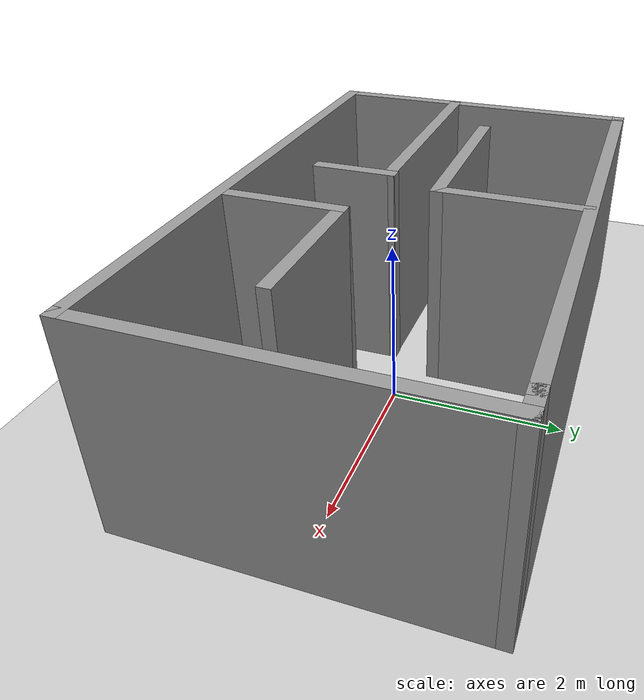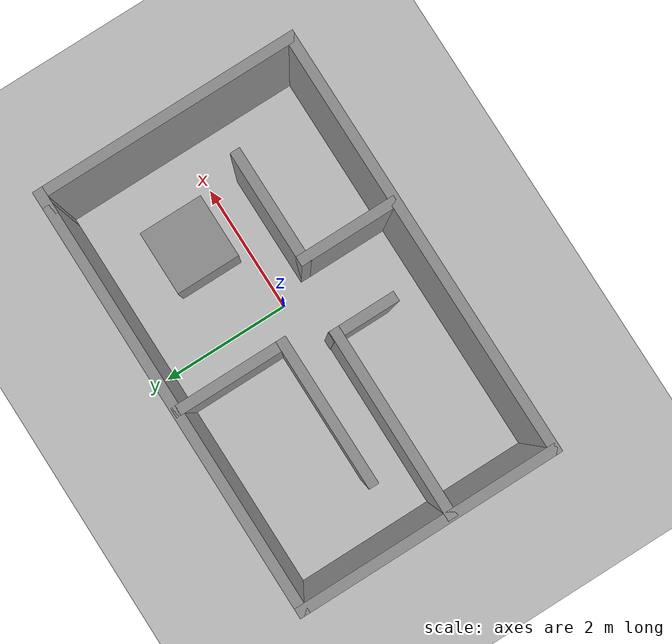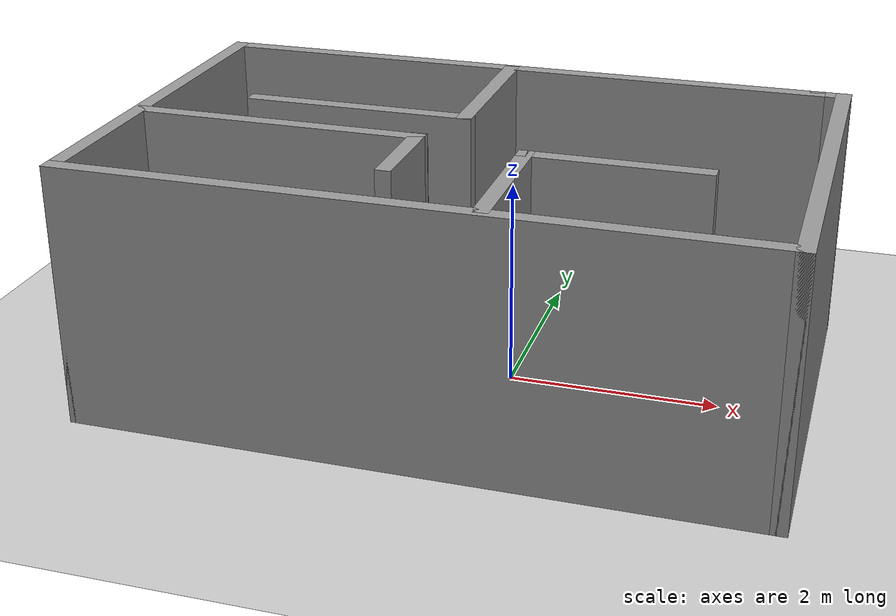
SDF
<sdf version="1.7">
 <world name="default">
  <light name="sun" type="directional">
   <pose>0 0 10 0 -0 0</pose>
   <diffuse>0.8 0.8 0.8 1</diffuse>
   <specular>0.2 0.2 0.2 1</specular>
   <attenuation>
    <range>1000</range>
    <constant>0.9</constant>
    <linear>0.01</linear>
    <quadratic>0.001</quadratic>
   </attenuation>
   <direction>-0.5 0.1 -0.9</direction>
   <spot><inner_angle>0</inner_angle><outer_angle>0</outer_angle><falloff>0</falloff></spot>
  </light>
  <model name="ground_plane">
   <static>1</static>
   <link name="link">
    <collision name="collision">
     <geometry><plane><normal>0 0 1</normal><size>100 100</size></plane></geometry>
     <surface><friction><ode><mu>100</mu><mu2>50</mu2></ode></friction></surface>
    </collision>
    <visual name="visual">
     <cast_shadows>0</cast_shadows>
     <geometry><plane><normal>0 0 1</normal><size>100 100</size></plane></geometry>
     <material>
      <script><uri>file://media/materials/scripts/gazebo.material</uri><name>Gazebo/Grey</name></script>
     </material>
    </visual>
   </link>
  </model>
  <gravity>0 0 -9.8</gravity>
  <magnetic_field>6e-06 2.3e-05 -4.2e-05</magnetic_field>
  <atmosphere type="adiabatic"/>
  <physics type="ode">
   <max_step_size>0.001</max_step_size>
   <real_time_factor>1</real_time_factor>
   <real_time_update_rate>1000</real_time_update_rate>
  </physics>
  <scene><ambient>0.4 0.4 0.4 1</ambient><background>0.7 0.7 0.7 1</background><shadows>1</shadows></scene>
  <audio><device>default</device></audio>
  <spherical_coordinates>
   <surface_model>EARTH_WGS84</surface_model>
   <latitude_deg>0</latitude_deg>
   <longitude_deg>0</longitude_deg>
   <elevation>0</elevation>
   <heading_deg>0</heading_deg>
  </spherical_coordinates>
  <model name="room">
   <pose>-0.398923 1.18347 0 0 -0 0</pose>
   <link name="Wall_0">
    <collision name="Wall_0_Collision">
     <geometry><box><size>6.25 0.15 2.5</size></box></geometry>
     <pose>0 0 1.25 0 -0 0</pose>
    </collision>
    <visual name="Wall_0_Visual">
     <pose>0 0 1.25 0 -0 0</pose>
     <geometry><box><size>6.25 0.15 2.5</size></box></geometry>
     <material>
      <script><uri>file://media/materials/scripts/gazebo.material</uri><name>Gazebo/Grey</name></script>
      <ambient>1 1 1 1</ambient>
     </material>
     <meta><layer>0</layer></meta>
    </visual>
    <pose>-0.125 0.7775 0 0 -0 3.14159</pose>
   </link>
   <link name="Wall_1">
    <collision name="Wall_1_Collision">
     <geometry><box><size>4 0.15 2.5</size></box></geometry>
     <pose>0 0 1.25 0 -0 0</pose>
    </collision>
    <visual name="Wall_1_Visual">
     <pose>0 0 1.25 0 -0 0</pose>
     <geometry><box><size>4 0.15 2.5</size></box></geometry>
     <material>
      <script><uri>file://media/materials/scripts/gazebo.material</uri><name>Gazebo/Grey</name></script>
      <ambient>1 1 1 1</ambient>
     </material>
     <meta><layer>0</layer></meta>
    </visual>
    <pose>-3.175 -1.1475 0 0 -0 -1.5708</pose>
   </link>
   <link name="Wall_10">
    <collision name="Wall_10_Collision">
     <geometry><box><size>1 0.15 2.5</size></box></geometry>
     <pose>0 0 1.25 0 -0 0</pose>
    </collision>
    <visual name="Wall_10_Visual">
     <pose>0 0 1.25 0 -0 0</pose>
     <geometry><box><size>1 0.15 2.5</size></box></geometry>
     <material>
      <script><uri>file://media/materials/scripts/gazebo.material</uri><name>Gazebo/Grey</name></script>
      <ambient>1 1 1 1</ambient>
     </material>
     <meta><layer>0</layer></meta>
    </visual>
    <pose>-0.415 -1.9175 0 0 -0 -1.5708</pose>
   </link>
   <link name="Wall_12">
    <collision name="Wall_12_Collision">
     <geometry><box><size>1.5 0.15 2.5</size></box></geometry>
     <pose>0 0 1.25 0 -0 0</pose>
    </collision>
    <visual name="Wall_12_Visual">
     <pose>0 0 1.25 0 -0 0</pose>
     <geometry><box><size>1.5 0.15 2.5</size></box></geometry>
     <material>
      <script><uri>file://media/materials/scripts/gazebo.material</uri><name>Gazebo/Grey</name></script>
      <ambient>1 1 1 1</ambient>
     </material>
     <meta><layer>0</layer></meta>
    </visual>
    <pose>0.635 -2.3375 0 0 -0 -1.5708</pose>
   </link>
   <link name="Wall_15">
    <collision name="Wall_15_Collision">
     <geometry><box><size>1.75 0.15 2.5</size></box></geometry>
     <pose>0 0 1.25 0 -0 0</pose>
    </collision>
    <visual name="Wall_15_Visual">
     <pose>0 0 1.25 0 -0 0</pose>
     <geometry><box><size>1.75 0.15 2.5</size></box></geometry>
     <material>
      <script><uri>file://media/materials/scripts/gazebo.material</uri><name>Gazebo/Grey</name></script>
      <ambient>1 1 1 1</ambient>
     </material>
     <meta><layer>0</layer></meta>
    </visual>
    <pose>1.435 -1.6625 0 0 -0 0</pose>
   </link>
   <link name="Wall_2">
    <collision name="Wall_2_Collision">
     <geometry><box><size>6.5 0.15 2.5</size></box></geometry>
     <pose>0 0 1.25 0 -0 0</pose>
    </collision>
    <visual name="Wall_2_Visual">
     <pose>0 0 1.25 0 -0 0</pose>
     <geometry><box><size>6.5 0.15 2.5</size></box></geometry>
     <material>
      <script><uri>file://media/materials/scripts/gazebo.material</uri><name>Gazebo/Grey</name></script>
      <ambient>1 1 1 1</ambient>
     </material>
     <meta><layer>0</layer></meta>
    </visual>
    <pose>0 -3.0725 0 0 -0 0</pose>
   </link>
   <link name="Wall_3">
    <collision name="Wall_3_Collision">
     <geometry><box><size>4 0.15 2.5</size></box></geometry>
     <pose>0 0 1.25 0 -0 0</pose>
    </collision>
    <visual name="Wall_3_Visual">
     <pose>0 0 1.25 0 -0 0</pose>
     <geometry><box><size>4 0.15 2.5</size></box></geometry>
     <material>
      <script><uri>file://media/materials/scripts/gazebo.material</uri><name>Gazebo/Grey</name></script>
      <ambient>1 1 1 1</ambient>
     </material>
     <meta><layer>0</layer></meta>
    </visual>
    <pose>3.175 -1.1475 0 0 -0 1.5708</pose>
   </link>
   <link name="Wall_4">
    <collision name="Wall_4_Collision">
     <geometry><box><size>0.4 0.15 2.5</size></box></geometry>
     <pose>0 0 1.25 0 -0 0</pose>
    </collision>
    <visual name="Wall_4_Visual">
     <pose>0 0 1.25 0 -0 0</pose>
     <geometry><box><size>0.4 0.15 2.5</size></box></geometry>
     <material>
      <script><uri>file://media/materials/scripts/gazebo.material</uri><name>Gazebo/Grey</name></script>
      <ambient>1 1 1 1</ambient>
     </material>
     <meta><layer>0</layer></meta>
    </visual>
    <pose>3.05 0.7775 0 0 -0 3.14159</pose>
   </link>
   <link name="Wall_6">
    <collision name="Wall_6_Collision">
     <geometry><box><size>1.75 0.15 2.5</size></box></geometry>
     <pose>0 0 1.25 0 -0 0</pose>
    </collision>
    <visual name="Wall_6_Visual">
     <pose>0 0 1.25 0 -0 0</pose>
     <geometry><box><size>1.75 0.15 2.5</size></box></geometry>
     <material>
      <script><uri>file://media/materials/scripts/gazebo.material</uri><name>Gazebo/Grey</name></script>
      <ambient>1 1 1 1</ambient>
     </material>
     <meta><layer>0</layer></meta>
    </visual>
    <pose>-0.155 -0.0525 0 0 -0 -1.5708</pose>
   </link>
   <link name="Wall_7">
    <collision name="Wall_7_Collision">
     <geometry><box><size>2.25 0.15 2.5</size></box></geometry>
     <pose>0 0 1.25 0 -0 0</pose>
    </collision>
    <visual name="Wall_7_Visual">
     <pose>0 0 1.25 0 -0 0</pose>
     <geometry><box><size>2.25 0.15 2.5</size></box></geometry>
     <material>
      <script><uri>file://media/materials/scripts/gazebo.material</uri><name>Gazebo/Grey</name></script>
      <ambient>1 1 1 1</ambient>
     </material>
     <meta><layer>0</layer></meta>
    </visual>
    <pose>-1.205 -0.8525 0 0 -0 3.14159</pose>
   </link>
   <link name="Wall_9">
    <collision name="Wall_9_Collision">
     <geometry><box><size>2.88002 0.15 2.5</size></box></geometry>
     <pose>0 0 1.25 0 -0 0</pose>
    </collision>
    <visual name="Wall_9_Visual">
     <pose>0 0 1.25 0 -0 0</pose>
     <geometry><box><size>2.88002 0.15 2.5</size></box></geometry>
     <material>
      <script><uri>file://media/materials/scripts/gazebo.material</uri><name>Gazebo/Grey</name></script>
      <ambient>1 1 1 1</ambient>
     </material>
     <meta><layer>0</layer></meta>
    </visual>
    <pose>-1.78 -1.4975 0 0 -0 -0.003663</pose>
   </link>
   <static>1</static>
  </model>
  <model name="unit_box">
   <pose>1.37885 0.677411 0.499995 -1e-05 0 0</pose>
   <link name="link">
    <inertial>
     <mass>1</mass>
     <inertia>
      <ixx>0.166667</ixx>
      <ixy>0</ixy>
      <ixz>0</ixz>
      <iyy>0.166667</iyy>
      <iyz>0</iyz>
      <izz>0.166667</izz>
     </inertia>
    </inertial>
    <collision name="collision"><geometry><box><size>1 1 1</size></box></geometry></collision>
    <visual name="visual">
     <geometry><box><size>1 1 1</size></box></geometry>
     <material>
      <script><name>Gazebo/Grey</name><uri>file://media/materials/scripts/gazebo.material</uri></script>
     </material>
    </visual>
   </link>
  </model>
 </world>
</sdf>
